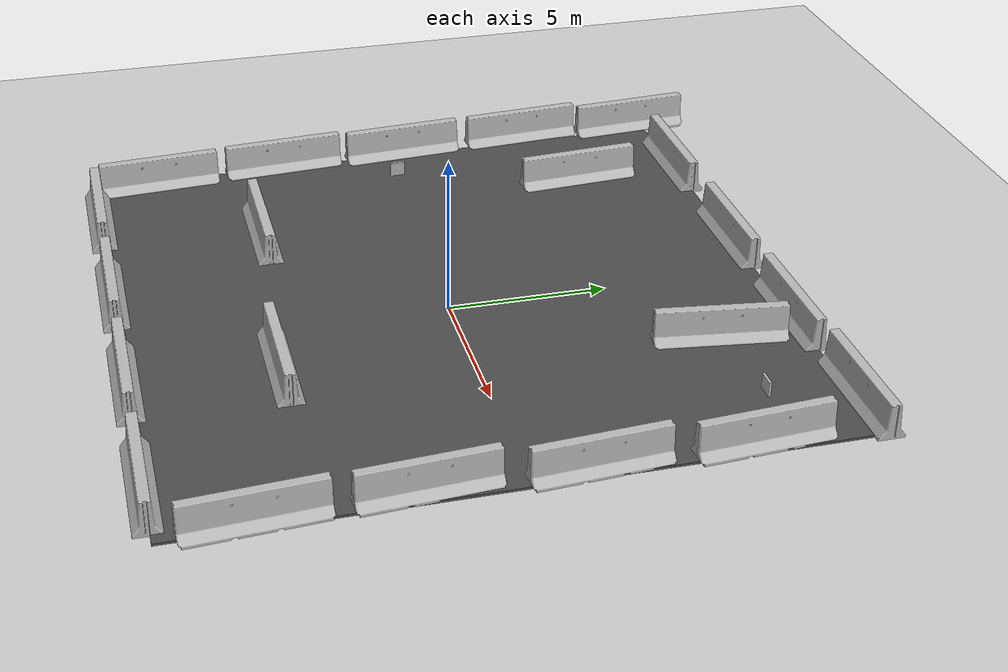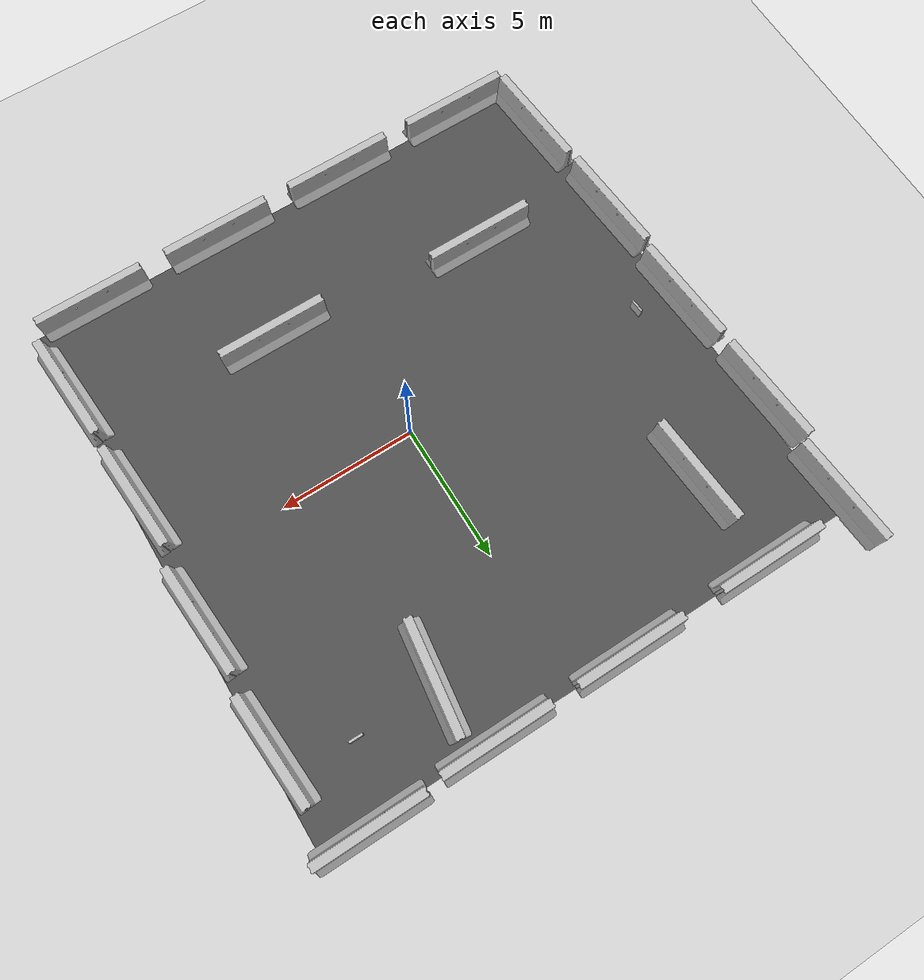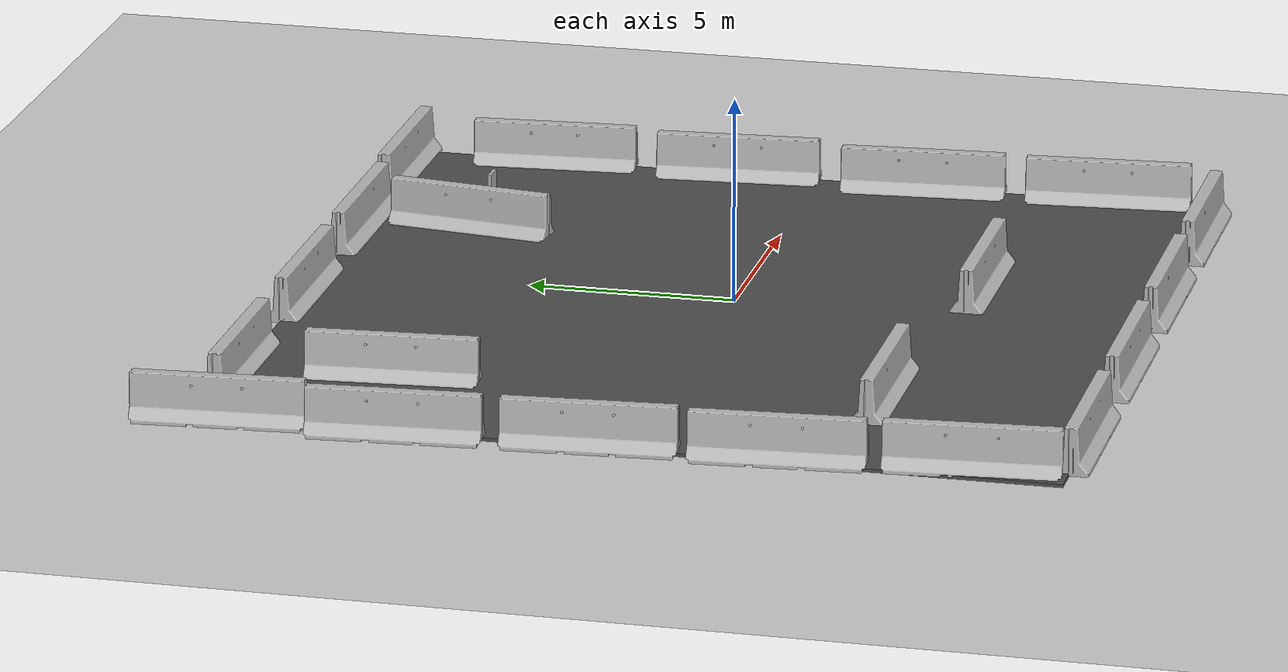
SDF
<sdf version="1.6">
 <world name="default">
  <light name="sun" type="directional">
   <pose>0 0 10 0 -0 0</pose>
   <diffuse>0.8 0.8 0.8 1</diffuse>
   <specular>0.2 0.2 0.2 1</specular>
   <attenuation>
    <range>1000</range>
    <constant>0.9</constant>
    <linear>0.01</linear>
    <quadratic>0.001</quadratic>
   </attenuation>
   <direction>-0.5 0.1 -0.9</direction>
  </light>
  <model name="ground_plane">
   <static>1</static>
   <link name="link">
    <collision name="collision">
     <geometry><plane><normal>0 0 1</normal><size>100 100</size></plane></geometry>
     <surface><friction><ode><mu>100</mu><mu2>50</mu2></ode></friction></surface>
    </collision>
    <visual name="visual">
     <cast_shadows>0</cast_shadows>
     <geometry><plane><normal>0 0 1</normal><size>100 100</size></plane></geometry>
     <material>
      <script><uri>file://media/materials/scripts/gazebo.material</uri><name>Gazebo/Grey</name></script>
     </material>
    </visual>
    <velocity_decay><linear>0</linear><angular>0</angular></velocity_decay>
   </link>
  </model>
  <physics name="default_physics" default="0" type="ode">
   <max_step_size>0.01</max_step_size>
   <real_time_factor>1</real_time_factor>
   <real_time_update_rate>100</real_time_update_rate>
  </physics>
  <scene><ambient>0.4 0.4 0.4 1</ambient><background>0.7 0.7 0.7 1</background><shadows>1</shadows></scene>
  <model name="jersey_barrier">
   <static>1</static>
   <link name="link">
    <visual name="visual">
     <geometry>
      <mesh><uri>model://jersey_barrier/meshes/jersey_barrier.dae</uri><scale>1 1 1</scale></mesh>
     </geometry>
    </visual>
    <collision name="upright">
     <pose>0 0 0.5715 0 -0 0</pose>
     <geometry><box><size>4.06542 0.3063 1.143</size></box></geometry>
    </collision>
    <collision name="base">
     <pose>0 0 0.032258 0 -0 0</pose>
     <geometry><box><size>4.06542 0.8107 0.064516</size></box></geometry>
    </collision>
    <collision name="base2">
     <pose>0 0 0.1 0 -0 0</pose>
     <geometry><box><size>4.06542 0.65 0.1</size></box></geometry>
    </collision>
    <collision name="base3">
     <pose>0 0 0.2 0 -0 0</pose>
     <geometry><box><size>4.06542 0.5 0.1</size></box></geometry>
    </collision>
    <collision name="left-angle">
     <pose>0 -0.224 0.2401 0.9 -0 0</pose>
     <geometry><box><size>4.06542 0.5 0.064516</size></box></geometry>
    </collision>
    <collision name="right-angle">
     <pose>0 0.224 0.2401 -0.9 0 0</pose>
     <geometry><box><size>4.06542 0.5 0.064516</size></box></geometry>
    </collision>
    <velocity_decay><linear>0</linear><angular>0</angular></velocity_decay>
   </link>
   <pose>-8 -10 0 0 -0 0</pose>
  </model>
  <model name="jersey_barrier_0">
   <static>1</static>
   <link name="link">
    <visual name="visual">
     <geometry>
      <mesh><uri>model://jersey_barrier/meshes/jersey_barrier.dae</uri><scale>1 1 1</scale></mesh>
     </geometry>
    </visual>
    <collision name="upright">
     <pose>0 0 0.5715 0 -0 0</pose>
     <geometry><box><size>4.06542 0.3063 1.143</size></box></geometry>
    </collision>
    <collision name="base">
     <pose>0 0 0.032258 0 -0 0</pose>
     <geometry><box><size>4.06542 0.8107 0.064516</size></box></geometry>
    </collision>
    <collision name="base2">
     <pose>0 0 0.1 0 -0 0</pose>
     <geometry><box><size>4.06542 0.65 0.1</size></box></geometry>
    </collision>
    <collision name="base3">
     <pose>0 0 0.2 0 -0 0</pose>
     <geometry><box><size>4.06542 0.5 0.1</size></box></geometry>
    </collision>
    <collision name="left-angle">
     <pose>0 -0.224 0.2401 0.9 -0 0</pose>
     <geometry><box><size>4.06542 0.5 0.064516</size></box></geometry>
    </collision>
    <collision name="right-angle">
     <pose>0 0.224 0.2401 -0.9 0 0</pose>
     <geometry><box><size>4.06542 0.5 0.064516</size></box></geometry>
    </collision>
    <velocity_decay><linear>0</linear><angular>0</angular></velocity_decay>
   </link>
   <pose>-3 -10 0 0 -0 0</pose>
  </model>
  <model name="jersey_barrier_1">
   <static>1</static>
   <link name="link">
    <visual name="visual">
     <geometry>
      <mesh><uri>model://jersey_barrier/meshes/jersey_barrier.dae</uri><scale>1 1 1</scale></mesh>
     </geometry>
    </visual>
    <collision name="upright">
     <pose>0 0 0.5715 0 -0 0</pose>
     <geometry><box><size>4.06542 0.3063 1.143</size></box></geometry>
    </collision>
    <collision name="base">
     <pose>0 0 0.032258 0 -0 0</pose>
     <geometry><box><size>4.06542 0.8107 0.064516</size></box></geometry>
    </collision>
    <collision name="base2">
     <pose>0 0 0.1 0 -0 0</pose>
     <geometry><box><size>4.06542 0.65 0.1</size></box></geometry>
    </collision>
    <collision name="base3">
     <pose>0 0 0.2 0 -0 0</pose>
     <geometry><box><size>4.06542 0.5 0.1</size></box></geometry>
    </collision>
    <collision name="left-angle">
     <pose>0 -0.224 0.2401 0.9 -0 0</pose>
     <geometry><box><size>4.06542 0.5 0.064516</size></box></geometry>
    </collision>
    <collision name="right-angle">
     <pose>0 0.224 0.2401 -0.9 0 0</pose>
     <geometry><box><size>4.06542 0.5 0.064516</size></box></geometry>
    </collision>
    <velocity_decay><linear>0</linear><angular>0</angular></velocity_decay>
   </link>
   <pose>2 -10 0 0 -0 0</pose>
  </model>
  <model name="jersey_barrier_2">
   <static>1</static>
   <link name="link">
    <visual name="visual">
     <geometry>
      <mesh><uri>model://jersey_barrier/meshes/jersey_barrier.dae</uri><scale>1 1 1</scale></mesh>
     </geometry>
    </visual>
    <collision name="upright">
     <pose>0 0 0.5715 0 -0 0</pose>
     <geometry><box><size>4.06542 0.3063 1.143</size></box></geometry>
    </collision>
    <collision name="base">
     <pose>0 0 0.032258 0 -0 0</pose>
     <geometry><box><size>4.06542 0.8107 0.064516</size></box></geometry>
    </collision>
    <collision name="base2">
     <pose>0 0 0.1 0 -0 0</pose>
     <geometry><box><size>4.06542 0.65 0.1</size></box></geometry>
    </collision>
    <collision name="base3">
     <pose>0 0 0.2 0 -0 0</pose>
     <geometry><box><size>4.06542 0.5 0.1</size></box></geometry>
    </collision>
    <collision name="left-angle">
     <pose>0 -0.224 0.2401 0.9 -0 0</pose>
     <geometry><box><size>4.06542 0.5 0.064516</size></box></geometry>
    </collision>
    <collision name="right-angle">
     <pose>0 0.224 0.2401 -0.9 0 0</pose>
     <geometry><box><size>4.06542 0.5 0.064516</size></box></geometry>
    </collision>
    <velocity_decay><linear>0</linear><angular>0</angular></velocity_decay>
   </link>
   <pose>7 -10 0 0 -0 0</pose>
  </model>
  <model name="jersey_barrier_3">
   <static>1</static>
   <link name="link">
    <visual name="visual">
     <geometry>
      <mesh><uri>model://jersey_barrier/meshes/jersey_barrier.dae</uri><scale>1 1 1</scale></mesh>
     </geometry>
    </visual>
    <collision name="upright">
     <pose>0 0 0.5715 0 -0 0</pose>
     <geometry><box><size>4.06542 0.3063 1.143</size></box></geometry>
    </collision>
    <collision name="base">
     <pose>0 0 0.032258 0 -0 0</pose>
     <geometry><box><size>4.06542 0.8107 0.064516</size></box></geometry>
    </collision>
    <collision name="base2">
     <pose>0 0 0.1 0 -0 0</pose>
     <geometry><box><size>4.06542 0.65 0.1</size></box></geometry>
    </collision>
    <collision name="base3">
     <pose>0 0 0.2 0 -0 0</pose>
     <geometry><box><size>4.06542 0.5 0.1</size></box></geometry>
    </collision>
    <collision name="left-angle">
     <pose>0 -0.224 0.2401 0.9 -0 0</pose>
     <geometry><box><size>4.06542 0.5 0.064516</size></box></geometry>
    </collision>
    <collision name="right-angle">
     <pose>0 0.224 0.2401 -0.9 0 0</pose>
     <geometry><box><size>4.06542 0.5 0.064516</size></box></geometry>
    </collision>
    <velocity_decay><linear>0</linear><angular>0</angular></velocity_decay>
   </link>
   <pose>-7.50675 10 0 0 -0 0</pose>
  </model>
  <model name="jersey_barrier_4">
   <static>1</static>
   <link name="link">
    <visual name="visual">
     <geometry>
      <mesh><uri>model://jersey_barrier/meshes/jersey_barrier.dae</uri><scale>1 1 1</scale></mesh>
     </geometry>
    </visual>
    <collision name="upright">
     <pose>0 0 0.5715 0 -0 0</pose>
     <geometry><box><size>4.06542 0.3063 1.143</size></box></geometry>
    </collision>
    <collision name="base">
     <pose>0 0 0.032258 0 -0 0</pose>
     <geometry><box><size>4.06542 0.8107 0.064516</size></box></geometry>
    </collision>
    <collision name="base2">
     <pose>0 0 0.1 0 -0 0</pose>
     <geometry><box><size>4.06542 0.65 0.1</size></box></geometry>
    </collision>
    <collision name="base3">
     <pose>0 0 0.2 0 -0 0</pose>
     <geometry><box><size>4.06542 0.5 0.1</size></box></geometry>
    </collision>
    <collision name="left-angle">
     <pose>0 -0.224 0.2401 0.9 -0 0</pose>
     <geometry><box><size>4.06542 0.5 0.064516</size></box></geometry>
    </collision>
    <collision name="right-angle">
     <pose>0 0.224 0.2401 -0.9 0 0</pose>
     <geometry><box><size>4.06542 0.5 0.064516</size></box></geometry>
    </collision>
    <velocity_decay><linear>0</linear><angular>0</angular></velocity_decay>
   </link>
   <pose>-2 10 0 0 -0 0</pose>
  </model>
  <model name="jersey_barrier_5">
   <static>1</static>
   <link name="link">
    <visual name="visual">
     <geometry>
      <mesh><uri>model://jersey_barrier/meshes/jersey_barrier.dae</uri><scale>1 1 1</scale></mesh>
     </geometry>
    </visual>
    <collision name="upright">
     <pose>0 0 0.5715 0 -0 0</pose>
     <geometry><box><size>4.06542 0.3063 1.143</size></box></geometry>
    </collision>
    <collision name="base">
     <pose>0 0 0.032258 0 -0 0</pose>
     <geometry><box><size>4.06542 0.8107 0.064516</size></box></geometry>
    </collision>
    <collision name="base2">
     <pose>0 0 0.1 0 -0 0</pose>
     <geometry><box><size>4.06542 0.65 0.1</size></box></geometry>
    </collision>
    <collision name="base3">
     <pose>0 0 0.2 0 -0 0</pose>
     <geometry><box><size>4.06542 0.5 0.1</size></box></geometry>
    </collision>
    <collision name="left-angle">
     <pose>0 -0.224 0.2401 0.9 -0 0</pose>
     <geometry><box><size>4.06542 0.5 0.064516</size></box></geometry>
    </collision>
    <collision name="right-angle">
     <pose>0 0.224 0.2401 -0.9 0 0</pose>
     <geometry><box><size>4.06542 0.5 0.064516</size></box></geometry>
    </collision>
    <velocity_decay><linear>0</linear><angular>0</angular></velocity_decay>
   </link>
   <pose>3 10 0 0 -0 0</pose>
  </model>
  <model name="jersey_barrier_6">
   <static>1</static>
   <link name="link">
    <visual name="visual">
     <geometry>
      <mesh><uri>model://jersey_barrier/meshes/jersey_barrier.dae</uri><scale>1 1 1</scale></mesh>
     </geometry>
    </visual>
    <collision name="upright">
     <pose>0 0 0.5715 0 -0 0</pose>
     <geometry><box><size>4.06542 0.3063 1.143</size></box></geometry>
    </collision>
    <collision name="base">
     <pose>0 0 0.032258 0 -0 0</pose>
     <geometry><box><size>4.06542 0.8107 0.064516</size></box></geometry>
    </collision>
    <collision name="base2">
     <pose>0 0 0.1 0 -0 0</pose>
     <geometry><box><size>4.06542 0.65 0.1</size></box></geometry>
    </collision>
    <collision name="base3">
     <pose>0 0 0.2 0 -0 0</pose>
     <geometry><box><size>4.06542 0.5 0.1</size></box></geometry>
    </collision>
    <collision name="left-angle">
     <pose>0 -0.224 0.2401 0.9 -0 0</pose>
     <geometry><box><size>4.06542 0.5 0.064516</size></box></geometry>
    </collision>
    <collision name="right-angle">
     <pose>0 0.224 0.2401 -0.9 0 0</pose>
     <geometry><box><size>4.06542 0.5 0.064516</size></box></geometry>
    </collision>
    <velocity_decay><linear>0</linear><angular>0</angular></velocity_decay>
   </link>
   <pose>7.59638 10.1239 0 0 -0 0</pose>
  </model>
  <model name="asphalt_plane">
   <static>1</static>
   <link name="link">
    <collision name="collision"><geometry><box><size>20 20 0.1</size></box></geometry></collision>
    <visual name="visual">
     <cast_shadows>0</cast_shadows>
     <geometry><box><size>20 20 0.1</size></box></geometry>
     <material>
      <script>
       <uri>model://asphalt_plane/materials/scripts</uri>
       <uri>model://asphalt_plane/materials/textures</uri>
       <name>vrc/asphalt</name>
      </script>
     </material>
    </visual>
    <velocity_decay><linear>0</linear><angular>0</angular></velocity_decay>
   </link>
   <pose>-0.661251 0.045315 0 0 -0 0</pose>
  </model>
  <gravity>0 0 -9.8</gravity>
  <magnetic_field>6e-06 2.3e-05 -4.2e-05</magnetic_field>
  <atmosphere type="adiabatic"/>
  <spherical_coordinates>
   <surface_model>EARTH_WGS84</surface_model>
   <latitude_deg>0</latitude_deg>
   <longitude_deg>0</longitude_deg>
   <elevation>0</elevation>
   <heading_deg>0</heading_deg>
  </spherical_coordinates>
  <model name="jersey_barrier_0_clone">
   <static>1</static>
   <link name="link">
    <visual name="visual">
     <geometry>
      <mesh><uri>model://jersey_barrier/meshes/jersey_barrier.dae</uri><scale>1 1 1</scale></mesh>
     </geometry>
    </visual>
    <collision name="upright">
     <pose>0 0 0.5715 0 -0 0</pose>
     <geometry><box><size>4.06542 0.3063 1.143</size></box></geometry>
    </collision>
    <collision name="base">
     <pose>0 0 0.032258 0 -0 0</pose>
     <geometry><box><size>4.06542 0.8107 0.064516</size></box></geometry>
    </collision>
    <collision name="base2">
     <pose>0 0 0.1 0 -0 0</pose>
     <geometry><box><size>4.06542 0.65 0.1</size></box></geometry>
    </collision>
    <collision name="base3">
     <pose>0 0 0.2 0 -0 0</pose>
     <geometry><box><size>4.06542 0.5 0.1</size></box></geometry>
    </collision>
    <collision name="left-angle">
     <pose>0 -0.224 0.2401 0.9 -0 0</pose>
     <geometry><box><size>4.06542 0.5 0.064516</size></box></geometry>
    </collision>
    <collision name="right-angle">
     <pose>0 0.224 0.2401 -0.9 0 0</pose>
     <geometry><box><size>4.06542 0.5 0.064516</size></box></geometry>
    </collision>
    <velocity_decay><linear>0</linear><angular>0</angular></velocity_decay>
   </link>
   <pose>-5.87209 -4.88744 0 0 -0 0</pose>
  </model>
  <model name="jersey_barrier_14_clone">
   <static>1</static>
   <link name="link">
    <visual name="visual">
     <geometry>
      <mesh><uri>model://jersey_barrier/meshes/jersey_barrier.dae</uri><scale>1 1 1</scale></mesh>
     </geometry>
    </visual>
    <collision name="upright">
     <pose>0 0 0.5715 0 -0 0</pose>
     <geometry><box><size>4.06542 0.3063 1.143</size></box></geometry>
    </collision>
    <collision name="base">
     <pose>0 0 0.032258 0 -0 0</pose>
     <geometry><box><size>4.06542 0.8107 0.064516</size></box></geometry>
    </collision>
    <collision name="base2">
     <pose>0 0 0.1 0 -0 0</pose>
     <geometry><box><size>4.06542 0.65 0.1</size></box></geometry>
    </collision>
    <collision name="base3">
     <pose>0 0 0.2 0 -0 0</pose>
     <geometry><box><size>4.06542 0.5 0.1</size></box></geometry>
    </collision>
    <collision name="left-angle">
     <pose>0 -0.224 0.2401 0.9 -0 0</pose>
     <geometry><box><size>4.06542 0.5 0.064516</size></box></geometry>
    </collision>
    <collision name="right-angle">
     <pose>0 0.224 0.2401 -0.9 0 0</pose>
     <geometry><box><size>4.06542 0.5 0.064516</size></box></geometry>
    </collision>
    <velocity_decay><linear>0</linear><angular>0</angular></velocity_decay>
   </link>
   <pose>3.67571 7.41832 0 0 -0 1.44</pose>
  </model>
  <light name="user_point_light_0" type="point">
   <pose>-6.25254 -7.68967 1 0 -0 0</pose>
   <diffuse>0.5 0.5 0.5 1</diffuse>
   <specular>0.1 0.1 0.1 1</specular>
   <attenuation>
    <range>20</range>
    <constant>0.5</constant>
    <linear>0.01</linear>
    <quadratic>0.001</quadratic>
   </attenuation>
   <cast_shadows>0</cast_shadows>
   <direction>0 0 -1</direction>
  </light>
  <light name="user_point_light_1" type="point">
   <pose>7.03469 6.96845 1 0 -0 0</pose>
   <diffuse>0.5 0.5 0.5 1</diffuse>
   <specular>0.1 0.1 0.1 1</specular>
   <attenuation>
    <range>20</range>
    <constant>0.5</constant>
    <linear>0.01</linear>
    <quadratic>0.001</quadratic>
   </attenuation>
   <cast_shadows>0</cast_shadows>
   <direction>0 0 -1</direction>
  </light>
  <light name="user_point_light_2" type="point">
   <pose>-5.77971 5.45373 1 0 -0 0</pose>
   <diffuse>0.5 0.5 0.5 1</diffuse>
   <specular>0.1 0.1 0.1 1</specular>
   <attenuation>
    <range>20</range>
    <constant>0.5</constant>
    <linear>0.01</linear>
    <quadratic>0.001</quadratic>
   </attenuation>
   <cast_shadows>0</cast_shadows>
   <direction>0 0 -1</direction>
  </light>
  <model name="jersey_barrier_7_clone_clone">
   <static>1</static>
   <link name="link">
    <visual name="visual">
     <geometry>
      <mesh><uri>model://jersey_barrier/meshes/jersey_barrier.dae</uri><scale>1 1 1</scale></mesh>
     </geometry>
    </visual>
    <collision name="upright">
     <pose>0 0 0.5715 0 -0 0</pose>
     <geometry><box><size>4.06542 0.3063 1.143</size></box></geometry>
    </collision>
    <collision name="base">
     <pose>0 0 0.032258 0 -0 0</pose>
     <geometry><box><size>4.06542 0.8107 0.064516</size></box></geometry>
    </collision>
    <collision name="base2">
     <pose>0 0 0.1 0 -0 0</pose>
     <geometry><box><size>4.06542 0.65 0.1</size></box></geometry>
    </collision>
    <collision name="base3">
     <pose>0 0 0.2 0 -0 0</pose>
     <geometry><box><size>4.06542 0.5 0.1</size></box></geometry>
    </collision>
    <collision name="left-angle">
     <pose>0 -0.224 0.2401 0.9 -0 0</pose>
     <geometry><box><size>4.06542 0.5 0.064516</size></box></geometry>
    </collision>
    <collision name="right-angle">
     <pose>0 0.224 0.2401 -0.9 0 0</pose>
     <geometry><box><size>4.06542 0.5 0.064516</size></box></geometry>
    </collision>
    <velocity_decay><linear>0</linear><angular>0</angular></velocity_decay>
   </link>
   <pose>-10.227 -7.81688 0 0 -0 1.64</pose>
  </model>
  <model name="jersey_barrier_7_clone_clone_0">
   <static>1</static>
   <link name="link">
    <visual name="visual">
     <geometry>
      <mesh><uri>model://jersey_barrier/meshes/jersey_barrier.dae</uri><scale>1 1 1</scale></mesh>
     </geometry>
    </visual>
    <collision name="upright">
     <pose>0 0 0.5715 0 -0 0</pose>
     <geometry><box><size>4.06542 0.3063 1.143</size></box></geometry>
    </collision>
    <collision name="base">
     <pose>0 0 0.032258 0 -0 0</pose>
     <geometry><box><size>4.06542 0.8107 0.064516</size></box></geometry>
    </collision>
    <collision name="base2">
     <pose>0 0 0.1 0 -0 0</pose>
     <geometry><box><size>4.06542 0.65 0.1</size></box></geometry>
    </collision>
    <collision name="base3">
     <pose>0 0 0.2 0 -0 0</pose>
     <geometry><box><size>4.06542 0.5 0.1</size></box></geometry>
    </collision>
    <collision name="left-angle">
     <pose>0 -0.224 0.2401 0.9 -0 0</pose>
     <geometry><box><size>4.06542 0.5 0.064516</size></box></geometry>
    </collision>
    <collision name="right-angle">
     <pose>0 0.224 0.2401 -0.9 0 0</pose>
     <geometry><box><size>4.06542 0.5 0.064516</size></box></geometry>
    </collision>
    <velocity_decay><linear>0</linear><angular>0</angular></velocity_decay>
   </link>
   <pose>-10.5844 -3.42893 0 0 -0 1.64</pose>
  </model>
  <model name="jersey_barrier_7_clone_clone_1">
   <static>1</static>
   <link name="link">
    <visual name="visual">
     <geometry>
      <mesh><uri>model://jersey_barrier/meshes/jersey_barrier.dae</uri><scale>1 1 1</scale></mesh>
     </geometry>
    </visual>
    <collision name="upright">
     <pose>0 0 0.5715 0 -0 0</pose>
     <geometry><box><size>4.06542 0.3063 1.143</size></box></geometry>
    </collision>
    <collision name="base">
     <pose>0 0 0.032258 0 -0 0</pose>
     <geometry><box><size>4.06542 0.8107 0.064516</size></box></geometry>
    </collision>
    <collision name="base2">
     <pose>0 0 0.1 0 -0 0</pose>
     <geometry><box><size>4.06542 0.65 0.1</size></box></geometry>
    </collision>
    <collision name="base3">
     <pose>0 0 0.2 0 -0 0</pose>
     <geometry><box><size>4.06542 0.5 0.1</size></box></geometry>
    </collision>
    <collision name="left-angle">
     <pose>0 -0.224 0.2401 0.9 -0 0</pose>
     <geometry><box><size>4.06542 0.5 0.064516</size></box></geometry>
    </collision>
    <collision name="right-angle">
     <pose>0 0.224 0.2401 -0.9 0 0</pose>
     <geometry><box><size>4.06542 0.5 0.064516</size></box></geometry>
    </collision>
    <velocity_decay><linear>0</linear><angular>0</angular></velocity_decay>
   </link>
   <pose>-10.7145 0.883432 0 0 -0 1.64</pose>
  </model>
  <model name="jersey_barrier_7_clone_clone_2">
   <static>1</static>
   <link name="link">
    <visual name="visual">
     <geometry>
      <mesh><uri>model://jersey_barrier/meshes/jersey_barrier.dae</uri><scale>1 1 1</scale></mesh>
     </geometry>
    </visual>
    <collision name="upright">
     <pose>0 0 0.5715 0 -0 0</pose>
     <geometry><box><size>4.06542 0.3063 1.143</size></box></geometry>
    </collision>
    <collision name="base">
     <pose>0 0 0.032258 0 -0 0</pose>
     <geometry><box><size>4.06542 0.8107 0.064516</size></box></geometry>
    </collision>
    <collision name="base2">
     <pose>0 0 0.1 0 -0 0</pose>
     <geometry><box><size>4.06542 0.65 0.1</size></box></geometry>
    </collision>
    <collision name="base3">
     <pose>0 0 0.2 0 -0 0</pose>
     <geometry><box><size>4.06542 0.5 0.1</size></box></geometry>
    </collision>
    <collision name="left-angle">
     <pose>0 -0.224 0.2401 0.9 -0 0</pose>
     <geometry><box><size>4.06542 0.5 0.064516</size></box></geometry>
    </collision>
    <collision name="right-angle">
     <pose>0 0.224 0.2401 -0.9 0 0</pose>
     <geometry><box><size>4.06542 0.5 0.064516</size></box></geometry>
    </collision>
    <velocity_decay><linear>0</linear><angular>0</angular></velocity_decay>
   </link>
   <pose>-10.9826 5.35915 0 0 -0 1.64</pose>
  </model>
  <model name="jersey_barrier_7_clone_clone_3">
   <static>1</static>
   <link name="link">
    <visual name="visual">
     <geometry>
      <mesh><uri>model://jersey_barrier/meshes/jersey_barrier.dae</uri><scale>1 1 1</scale></mesh>
     </geometry>
    </visual>
    <collision name="upright">
     <pose>0 0 0.5715 0 -0 0</pose>
     <geometry><box><size>4.06542 0.3063 1.143</size></box></geometry>
    </collision>
    <collision name="base">
     <pose>0 0 0.032258 0 -0 0</pose>
     <geometry><box><size>4.06542 0.8107 0.064516</size></box></geometry>
    </collision>
    <collision name="base2">
     <pose>0 0 0.1 0 -0 0</pose>
     <geometry><box><size>4.06542 0.65 0.1</size></box></geometry>
    </collision>
    <collision name="base3">
     <pose>0 0 0.2 0 -0 0</pose>
     <geometry><box><size>4.06542 0.5 0.1</size></box></geometry>
    </collision>
    <collision name="left-angle">
     <pose>0 -0.224 0.2401 0.9 -0 0</pose>
     <geometry><box><size>4.06542 0.5 0.064516</size></box></geometry>
    </collision>
    <collision name="right-angle">
     <pose>0 0.224 0.2401 -0.9 0 0</pose>
     <geometry><box><size>4.06542 0.5 0.064516</size></box></geometry>
    </collision>
    <velocity_decay><linear>0</linear><angular>0</angular></velocity_decay>
   </link>
   <pose>-10.9131 9.49994 0 0 -0 1.64</pose>
  </model>
  <model name="jersey_barrier_0_clone_0">
   <static>1</static>
   <link name="link">
    <visual name="visual">
     <geometry>
      <mesh><uri>model://jersey_barrier/meshes/jersey_barrier.dae</uri><scale>1 1 1</scale></mesh>
     </geometry>
    </visual>
    <collision name="upright">
     <pose>0 0 0.5715 0 -0 0</pose>
     <geometry><box><size>4.06542 0.3063 1.143</size></box></geometry>
    </collision>
    <collision name="base">
     <pose>0 0 0.032258 0 -0 0</pose>
     <geometry><box><size>4.06542 0.8107 0.064516</size></box></geometry>
    </collision>
    <collision name="base2">
     <pose>0 0 0.1 0 -0 0</pose>
     <geometry><box><size>4.06542 0.65 0.1</size></box></geometry>
    </collision>
    <collision name="base3">
     <pose>0 0 0.2 0 -0 0</pose>
     <geometry><box><size>4.06542 0.5 0.1</size></box></geometry>
    </collision>
    <collision name="left-angle">
     <pose>0 -0.224 0.2401 0.9 -0 0</pose>
     <geometry><box><size>4.06542 0.5 0.064516</size></box></geometry>
    </collision>
    <collision name="right-angle">
     <pose>0 0.224 0.2401 -0.9 0 0</pose>
     <geometry><box><size>4.06542 0.5 0.064516</size></box></geometry>
    </collision>
    <velocity_decay><linear>0</linear><angular>0</angular></velocity_decay>
   </link>
   <pose>2.19845 -5.55372 0 0 -0 0</pose>
  </model>
  <model name="jersey_barrier_7_clone_clone_1_clone">
   <static>1</static>
   <link name="link">
    <visual name="visual">
     <geometry>
      <mesh><uri>model://jersey_barrier/meshes/jersey_barrier.dae</uri><scale>1 1 1</scale></mesh>
     </geometry>
    </visual>
    <collision name="upright">
     <pose>0 0 0.5715 0 -0 0</pose>
     <geometry><box><size>4.06542 0.3063 1.143</size></box></geometry>
    </collision>
    <collision name="base">
     <pose>0 0 0.032258 0 -0 0</pose>
     <geometry><box><size>4.06542 0.8107 0.064516</size></box></geometry>
    </collision>
    <collision name="base2">
     <pose>0 0 0.1 0 -0 0</pose>
     <geometry><box><size>4.06542 0.65 0.1</size></box></geometry>
    </collision>
    <collision name="base3">
     <pose>0 0 0.2 0 -0 0</pose>
     <geometry><box><size>4.06542 0.5 0.1</size></box></geometry>
    </collision>
    <collision name="left-angle">
     <pose>0 -0.224 0.2401 0.9 -0 0</pose>
     <geometry><box><size>4.06542 0.5 0.064516</size></box></geometry>
    </collision>
    <collision name="right-angle">
     <pose>0 0.224 0.2401 -0.9 0 0</pose>
     <geometry><box><size>4.06542 0.5 0.064516</size></box></geometry>
    </collision>
    <velocity_decay><linear>0</linear><angular>0</angular></velocity_decay>
   </link>
   <pose>9.15917 -7.30998 0 0 -0 1.64</pose>
  </model>
  <model name="jersey_barrier_7_clone_clone_1_clone_0">
   <static>1</static>
   <link name="link">
    <visual name="visual">
     <geometry>
      <mesh><uri>model://jersey_barrier/meshes/jersey_barrier.dae</uri><scale>1 1 1</scale></mesh>
     </geometry>
    </visual>
    <collision name="upright">
     <pose>0 0 0.5715 0 -0 0</pose>
     <geometry><box><size>4.06542 0.3063 1.143</size></box></geometry>
    </collision>
    <collision name="base">
     <pose>0 0 0.032258 0 -0 0</pose>
     <geometry><box><size>4.06542 0.8107 0.064516</size></box></geometry>
    </collision>
    <collision name="base2">
     <pose>0 0 0.1 0 -0 0</pose>
     <geometry><box><size>4.06542 0.65 0.1</size></box></geometry>
    </collision>
    <collision name="base3">
     <pose>0 0 0.2 0 -0 0</pose>
     <geometry><box><size>4.06542 0.5 0.1</size></box></geometry>
    </collision>
    <collision name="left-angle">
     <pose>0 -0.224 0.2401 0.9 -0 0</pose>
     <geometry><box><size>4.06542 0.5 0.064516</size></box></geometry>
    </collision>
    <collision name="right-angle">
     <pose>0 0.224 0.2401 -0.9 0 0</pose>
     <geometry><box><size>4.06542 0.5 0.064516</size></box></geometry>
    </collision>
    <velocity_decay><linear>0</linear><angular>0</angular></velocity_decay>
   </link>
   <pose>8.94524 -2.71671 0 0 -0 1.64</pose>
  </model>
  <model name="jersey_barrier_7_clone_clone_1_clone_1">
   <static>1</static>
   <link name="link">
    <visual name="visual">
     <geometry>
      <mesh><uri>model://jersey_barrier/meshes/jersey_barrier.dae</uri><scale>1 1 1</scale></mesh>
     </geometry>
    </visual>
    <collision name="upright">
     <pose>0 0 0.5715 0 -0 0</pose>
     <geometry><box><size>4.06542 0.3063 1.143</size></box></geometry>
    </collision>
    <collision name="base">
     <pose>0 0 0.032258 0 -0 0</pose>
     <geometry><box><size>4.06542 0.8107 0.064516</size></box></geometry>
    </collision>
    <collision name="base2">
     <pose>0 0 0.1 0 -0 0</pose>
     <geometry><box><size>4.06542 0.65 0.1</size></box></geometry>
    </collision>
    <collision name="base3">
     <pose>0 0 0.2 0 -0 0</pose>
     <geometry><box><size>4.06542 0.5 0.1</size></box></geometry>
    </collision>
    <collision name="left-angle">
     <pose>0 -0.224 0.2401 0.9 -0 0</pose>
     <geometry><box><size>4.06542 0.5 0.064516</size></box></geometry>
    </collision>
    <collision name="right-angle">
     <pose>0 0.224 0.2401 -0.9 0 0</pose>
     <geometry><box><size>4.06542 0.5 0.064516</size></box></geometry>
    </collision>
    <velocity_decay><linear>0</linear><angular>0</angular></velocity_decay>
   </link>
   <pose>9.02712 1.97079 0 0 -0 1.64</pose>
  </model>
  <model name="jersey_barrier_7_clone_clone_1_clone_2">
   <static>1</static>
   <link name="link">
    <visual name="visual">
     <geometry>
      <mesh><uri>model://jersey_barrier/meshes/jersey_barrier.dae</uri><scale>1 1 1</scale></mesh>
     </geometry>
    </visual>
    <collision name="upright">
     <pose>0 0 0.5715 0 -0 0</pose>
     <geometry><box><size>4.06542 0.3063 1.143</size></box></geometry>
    </collision>
    <collision name="base">
     <pose>0 0 0.032258 0 -0 0</pose>
     <geometry><box><size>4.06542 0.8107 0.064516</size></box></geometry>
    </collision>
    <collision name="base2">
     <pose>0 0 0.1 0 -0 0</pose>
     <geometry><box><size>4.06542 0.65 0.1</size></box></geometry>
    </collision>
    <collision name="base3">
     <pose>0 0 0.2 0 -0 0</pose>
     <geometry><box><size>4.06542 0.5 0.1</size></box></geometry>
    </collision>
    <collision name="left-angle">
     <pose>0 -0.224 0.2401 0.9 -0 0</pose>
     <geometry><box><size>4.06542 0.5 0.064516</size></box></geometry>
    </collision>
    <collision name="right-angle">
     <pose>0 0.224 0.2401 -0.9 0 0</pose>
     <geometry><box><size>4.06542 0.5 0.064516</size></box></geometry>
    </collision>
    <velocity_decay><linear>0</linear><angular>0</angular></velocity_decay>
   </link>
   <pose>9.00493 6.63328 0 0 -0 1.64</pose>
  </model>
  <model name="jersey_barrier_7_clone_clone_1_clone_3">
   <static>1</static>
   <link name="link">
    <visual name="visual">
     <geometry>
      <mesh><uri>model://jersey_barrier/meshes/jersey_barrier.dae</uri><scale>1 1 1</scale></mesh>
     </geometry>
    </visual>
    <collision name="upright">
     <pose>0 0 0.5715 0 -0 0</pose>
     <geometry><box><size>4.06542 0.3063 1.143</size></box></geometry>
    </collision>
    <collision name="base">
     <pose>0 0 0.032258 0 -0 0</pose>
     <geometry><box><size>4.06542 0.8107 0.064516</size></box></geometry>
    </collision>
    <collision name="base2">
     <pose>0 0 0.1 0 -0 0</pose>
     <geometry><box><size>4.06542 0.65 0.1</size></box></geometry>
    </collision>
    <collision name="base3">
     <pose>0 0 0.2 0 -0 0</pose>
     <geometry><box><size>4.06542 0.5 0.1</size></box></geometry>
    </collision>
    <collision name="left-angle">
     <pose>0 -0.224 0.2401 0.9 -0 0</pose>
     <geometry><box><size>4.06542 0.5 0.064516</size></box></geometry>
    </collision>
    <collision name="right-angle">
     <pose>0 0.224 0.2401 -0.9 0 0</pose>
     <geometry><box><size>4.06542 0.5 0.064516</size></box></geometry>
    </collision>
    <velocity_decay><linear>0</linear><angular>0</angular></velocity_decay>
   </link>
   <pose>-7.26931 6.40688 0 0 -0 1.64</pose>
  </model>
  <model name="artag2">
   <link name="simple_box_base_link">
    <inertial>
     <mass>1</mass>
     <inertia>
      <ixx>0.0741667</ixx>
      <ixy>0</ixy>
      <ixz>0</ixz>
      <iyy>0.0585417</iyy>
      <iyz>0</iyz>
      <izz>0.0260417</izz>
     </inertia>
    </inertial>
    <collision name="simple_box_base_link_collision">
     <geometry><box><size>0.2 0.2 0.2</size></box></geometry>
     <surface>
      <contact><ode><kp>100000</kp><kd>100000</kd></ode></contact>
      <friction><ode><mu>0.1</mu><mu2>0.1</mu2><fdir1>1 0 0</fdir1></ode></friction>
     </surface>
    </collision>
    <visual name="simple_box_base_link_visual">
     <geometry>
      <mesh>
       <scale>1 1 1</scale>
       <uri>/home/fair/warthog_ws/src/warthog_auto/ur10_b/ur_description/meshes/ur10/visual/ARTAG2.dae</uri>
      </mesh>
     </geometry>
     <material><script><uri>__default__</uri><name>__default__</name></script></material>
    </visual>
   </link>
   <pose>6.77675 7.86975 0.149994 1.5708 -0 0</pose>
  </model>
  <model name="artag2_clone">
   <link name="simple_box_base_link">
    <inertial>
     <mass>1</mass>
     <inertia>
      <ixx>0.0741667</ixx>
      <ixy>0</ixy>
      <ixz>0</ixz>
      <iyy>0.0585417</iyy>
      <iyz>0</iyz>
      <izz>0.0260417</izz>
     </inertia>
    </inertial>
    <collision name="simple_box_base_link_collision">
     <geometry><box><size>0.2 0.2 0.2</size></box></geometry>
     <surface>
      <contact><ode><kp>100000</kp><kd>100000</kd></ode></contact>
      <friction><ode><mu>0.1</mu><mu2>0.1</mu2><fdir1>1 0 0</fdir1></ode></friction>
     </surface>
    </collision>
    <visual name="simple_box_base_link_visual">
     <geometry>
      <mesh>
       <scale>1 1 1</scale>
       <uri>/home/fair/warthog_ws/src/warthog_auto/ur10_b/ur_description/meshes/ur10/visual/ARTAG2.dae</uri>
      </mesh>
     </geometry>
     <material><script><uri>__default__</uri><name>__default__</name></script></material>
    </visual>
   </link>
   <pose>-9.37183 0.480864 0.149996 1.57083 1e-06 1.63891</pose>
  </model>
 </world>
</sdf>
